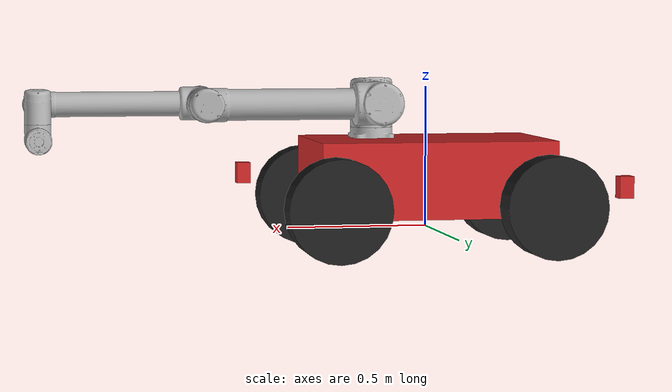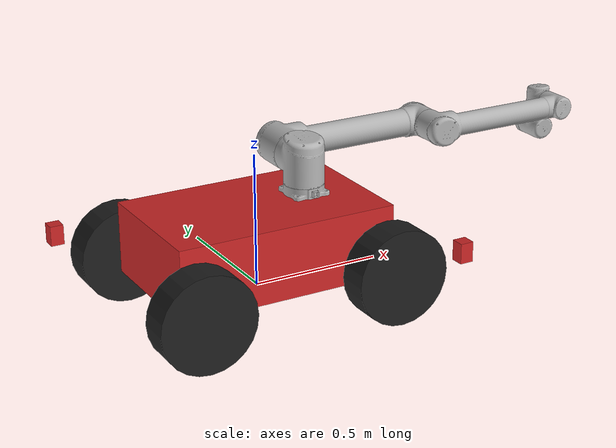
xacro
<?xml version="1.0"?>

<robot name="mecanum" xmlns:xacro="http://ros.org/wiki/xacro">

  <!-- include gazebo plugins -->
  <xacro:include filename="$(find mecanum_sim)/urdf/mecanum.gazebo" />
  <xacro:include filename="$(find mecanum_sim)/urdf/mecanum2.gazebo" />
  <!-- ur10 -->
  <xacro:include filename="$(find ur_description)/urdf/common.gazebo.xacro" />
  <xacro:include filename="$(find ur_description)/urdf/ur10.urdf.xacro" />

  <xacro:property name="base_width" value="0.52" />   <!-- 14.5 in -->
  <xacro:property name="base_length" value="0.84" />  <!-- 21 5/8 in -->
  <xacro:property name="base_height" value="0.27" />   <!-- 2.5 in  -->
  <xacro:property name="wheel_radius" value="0.18" /> <!-- 4.0 in  -->
  <xacro:property name="wheel_width" value="0.12" />  <!-- 3.0 in  -->
  <xacro:property name="wheel_gap" value="0.08" />    <!-- 2.0 in  -->
  <xacro:property name="wheel_setback" value="0.04" />    <!-- 1 5/8 in  -->
  <xacro:property name="lidar_width" value="0.0508" />    <!-- 2.0 in  -->
  <xacro:property name="lidar_length" value="0.0508" />    <!-- 2.0 in  -->
  <xacro:property name="lidar_height" value="0.0762" />    <!-- 3.0 in  -->
  <xacro:property name="lidar_setback" value="0.0127" />    <!-- 0.5 in  -->
  <xacro:property name="dx" value="0.04" />    <!-- 0.5 in  -->
  <xacro:property name="base_up" value="0.09" />

  <xacro:property name="base_mass" value="300.0" />
  <xacro:property name="wheel_mass" value="10.0" />

  <!--~~~~~~~~~~~~~~~~~~~~~~~~ ~ ROBOT BASE ~ ~~~~~~~~~~~~~~~~~~~~~~~~~~~~~~-->

  <link name="base_footprint">
    <visual>
      <geometry>
        <box size="0.001 0.001 0.001"/>
      </geometry>
      <origin rpy="0 0 0" xyz="0 0 0"/>
    </visual>
    <inertial>
        <mass value="0.0001" />
        <inertia ixx="0.001" ixy="0" ixz="0" iyy="0.001" iyz="0" izz="0.001" />
      </inertial>
  </link>

  <gazebo reference="base_footprint">
    <material>Gazebo/Green</material>
    <turnGravityOff>false</turnGravityOff>
  </gazebo>

  <joint name="base_joint" type="fixed">
    <parent link="base_footprint"/>
    <child link="base_link_0"/>
    <origin xyz="0.0 0.0 ${base_up}" rpy="0 0 0"/>
  </joint>
  <!-- Make a box for robot base -->
  <link name="base_link_0">

  	<!-- Draw imaginary box around the robot for collision detection -->
    <collision>
      <origin xyz="0 0 0" rpy="0 0 0"/>
      <geometry>
       <box size="${base_length} ${base_width} ${base_height}"/>
      </geometry>
    </collision>

    <!-- Describe how to draw the box in 3d -->
    <visual>
      <origin xyz="0 0 ${base_up}" rpy="0 0 0"/>
      <geometry>
           <box size="${base_length} ${base_width} ${base_height}"/>
      </geometry>
      <material name="red"/>
    </visual>

    <inertial>
      <mass value="${base_mass}" />
      <origin xyz="0 0 0" rpy="0 0 0"/>
      <inertia ixx="${(base_mass*(base_width*base_width+base_height*base_height)/12.0)}" ixy="0" ixz="0" iyy="${(base_mass*(base_length*base_length+base_height*base_height)/12.0)}" iyz="0" izz="${(base_mass*(base_width*base_width+base_length*base_length)/12.0)}" />
    </inertial>
  </link>

  <gazebo reference="base_link_0">
    <material>Gazebo/DarkGrey</material>
    <mu1>0.5</mu1>
    <mu2>0.5</mu2>
    <kp>500000.0</kp>
    <kd>10.0</kd>
    <minDepth>0.001</minDepth>
    <maxVel>0.3</maxVel>
    <fdir1>1 0 0</fdir1>
  </gazebo>

  <!--~~~~~~~~~~~~~~~~~~~~~~~~ ~ ROBOT FLLINK ~ ~~~~~~~~~~~~~~~~~~~~~~~~~~~~~~-->
  <joint name="fl_joint" type="fixed">
      <parent link="base_link_0"/>
      <child link="fl_link"/>
      <origin rpy="0 0 0" xyz="${base_length/2 - wheel_setback} ${base_width/2 + wheel_gap} 0.0"/>
      <axis xyz="0 0 0"/>
  </joint>

  <link name="fl_link">
      <visual>
        <geometry>
          <cylinder length="${wheel_width}" radius="${wheel_radius}"/>
        </geometry>
        <origin rpy="${pi/2} 0 0" xyz="0 0 0"/>
      </visual>

      <collision>
        <geometry>
          <cylinder length="${wheel_width}" radius="${wheel_radius}"/>
        </geometry>
        <origin rpy="${pi/2} 0 0" xyz="0 0 0"/>
      </collision>

      <inertial>
        <mass value="${wheel_mass}" />
        <origin rpy="${pi/2} 0 0" xyz="0 0 0"/>
        <inertia ixx="${(wheel_mass*wheel_radius*wheel_radius)/4.0+(wheel_mass*wheel_width*wheel_width)/3.0}" ixy="0" ixz="0" iyy="${(wheel_mass*wheel_radius*wheel_radius)/2.0}" iyz="0" izz="${(wheel_mass*wheel_radius*wheel_radius)/4.0+(wheel_mass*wheel_width*wheel_width)/3.0}" />
      </inertial>
    </link>

  <gazebo reference="fl_link">
    <material>Gazebo/Black</material>
    <mu1>0.5</mu1>
    <mu2>0.5</mu2>
    <kp>500000.0</kp>
    <kd>10.0</kd>
    <minDepth>0.001</minDepth>
    <maxVel>0.3</maxVel>
    <fdir1>1 0 0</fdir1>
  </gazebo>

  <!--~~~~~~~~~~~~~~~~~~~~~~~~ ~ ROBOT FRLINK ~ ~~~~~~~~~~~~~~~~~~~~~~~~~~~~~~-->
  <joint name="fr_joint" type="fixed">
      <parent link="base_link_0"/>
      <child link="fr_link"/>
      <origin rpy="0 0 0" xyz="${base_length/2 - wheel_setback} ${-base_width/2 - wheel_gap} 0.0"/>
      <axis xyz="0 0 0"/>
  </joint>

    <link name="fr_link">
        <visual>
          <geometry>
            <cylinder length="${wheel_width}" radius="${wheel_radius}"/>
          </geometry>
          <origin rpy="${pi/2} 0 0" xyz="0 0 0"/>
        </visual>

        <collision>
          <geometry>
            <cylinder length="${wheel_width}" radius="${wheel_radius}"/>
          </geometry>
          <origin rpy="${pi/2} 0 0" xyz="0 0 0"/>
        </collision>

        <inertial>
        <mass value="${wheel_mass}" />
        <origin rpy="${pi/2} 0 0" xyz="0 0 0"/>
        <inertia ixx="${(wheel_mass*wheel_radius*wheel_radius)/4.0+(wheel_mass*wheel_width*wheel_width)/3.0}" ixy="0" ixz="0" iyy="${(wheel_mass*wheel_radius*wheel_radius)/2.0}" iyz="0" izz="${(wheel_mass*wheel_radius*wheel_radius)/4.0+(wheel_mass*wheel_width*wheel_width)/3.0}" />
        </inertial>
      </link>

  <gazebo reference="fr_link">
    <material>Gazebo/Black</material>
    <mu1>0.5</mu1>
    <mu2>0.5</mu2>
    <kp>500000.0</kp>
    <kd>10.0</kd>
    <minDepth>0.001</minDepth>
    <maxVel>0.3</maxVel>
    <fdir1>1 0 0</fdir1>
  </gazebo>

  <!--~~~~~~~~~~~~~~~~~~~~~~~~ ~ ROBOT BLLINK ~ ~~~~~~~~~~~~~~~~~~~~~~~~~~~~~~-->
  <joint name="bl_joint" type="fixed">
      <parent link="base_link_0"/>
      <child link="bl_link"/>
      <origin rpy="0 0 0" xyz="${-base_length/2 + wheel_setback} ${base_width/2 + wheel_gap} 0.0"/>
      <axis xyz="0 0 0"/>
  </joint>

      <link name="bl_link">
          <visual>
            <geometry>
              <cylinder length="${wheel_width}" radius="${wheel_radius}"/>
            </geometry>
            <origin rpy="${pi/2} 0 0" xyz="0 0 0"/>
          </visual>

          <collision>
            <geometry>
              <cylinder length="${wheel_width}" radius="${wheel_radius}"/>
            </geometry>
            <origin rpy="${pi/2} 0 0" xyz="0 0 0"/>
          </collision>

          <inertial>
        <mass value="${wheel_mass}" />
        <origin rpy="${pi/2} 0 0" xyz="0 0 0"/>
        <inertia ixx="${(wheel_mass*wheel_radius*wheel_radius)/4.0+(wheel_mass*wheel_width*wheel_width)/3.0}" ixy="0" ixz="0" iyy="${(wheel_mass*wheel_radius*wheel_radius)/2.0}" iyz="0" izz="${(wheel_mass*wheel_radius*wheel_radius)/4.0+(wheel_mass*wheel_width*wheel_width)/3.0}" />
        </inertial>
        </link>

  <gazebo reference="bl_link">
    <material>Gazebo/Black</material>
    <mu1>0.5</mu1>
    <mu2>0.5</mu2>
    <kp>500000.0</kp>
    <kd>10.0</kd>
    <minDepth>0.001</minDepth>
    <maxVel>0.3</maxVel>
    <fdir1>1 0 0</fdir1>
  </gazebo>

  <!--~~~~~~~~~~~~~~~~~~~~~~~~ ~ ROBOT BRLINK ~ ~~~~~~~~~~~~~~~~~~~~~~~~~~~~~~-->
  <joint name="br_joint" type="fixed">
      <parent link="base_link_0"/>
      <child link="br_link"/>
      <origin rpy="0 0 0" xyz="${-base_length/2 + wheel_setback} ${-base_width/2 - wheel_gap} 0.0"/>
      <axis xyz="0 0 0"/>
  </joint>

        <link name="br_link">
            <visual>
              <geometry>
                <cylinder length="${wheel_width}" radius="${wheel_radius}"/>
              </geometry>
              <origin rpy="${pi/2} 0 0" xyz="0 0 0"/>
            </visual>

            <collision>
              <geometry>
                <cylinder length="${wheel_width}" radius="${wheel_radius}"/>
              </geometry>
              <origin rpy="${pi/2} 0 0" xyz="0 0 0"/>
            </collision>

           <inertial>
        <mass value="${wheel_mass}" />
        <origin rpy="${pi/2} 0 0" xyz="0 0 0"/>
        <inertia ixx="${(wheel_mass*wheel_radius*wheel_radius)/4.0+(wheel_mass*wheel_width*wheel_width)/3.0}" ixy="0" ixz="0" iyy="${(wheel_mass*wheel_radius*wheel_radius)/2.0}" iyz="0" izz="${(wheel_mass*wheel_radius*wheel_radius)/4.0+(wheel_mass*wheel_width*wheel_width)/3.0}" />
        </inertial>
          </link>

  <gazebo reference="br_link">
    <material>Gazebo/Black</material>
    <mu1>0.5</mu1>
    <mu2>0.5</mu2>
    <kp>500000.0</kp>
    <kd>10.0</kd>
    <minDepth>0.001</minDepth>
    <maxVel>0.3</maxVel>
    <fdir1>1 0 0</fdir1>
  </gazebo>

  <!--~~~~~~~~~~~~~~~~~~~~~~~ Arm ~~~~~~~~~~~~~~~~~~~~~~~~~~~~-->
  <!-- arm -->
  <xacro:ur10_robot prefix="" joint_limited="false"/>

  <joint name="ur10_arm_base" type="fixed">
    <parent link="base_link_0" />
    <child link = "base_link" />
    <origin xyz="0.20 0.0 0.23" rpy="0.0 0.0 0.0" />
  </joint>

  <!--~~~~~~~~~~~~~~~~~~~~~~~ ~ Lidar ~1~ ~~~~~~~~~~~~~~~~~~~~~~~~~~~~-->

  <link name="laser_link">

    <collision>
      <origin xyz="0 0 0" rpy="0 0 0"/>
      <geometry>
       <box size="${lidar_length} ${lidar_width} ${lidar_height}"/>
      </geometry>
    </collision>

    <visual>
      <origin xyz="0 0 0" rpy="0 0 0"/>
      <geometry>
           <box size="${lidar_length} ${lidar_width} ${lidar_height}"/>
      </geometry>
      <material name="red"/>
    </visual>

    <inertial>
      <mass value="1e-4" />
      <origin xyz="0 0 0" rpy="0 0 0"/>
      <inertia ixx="1e-6" ixy="0" ixz="0" iyy="1e-6" iyz="0" izz="1e-6" />
    </inertial>
  </link>

  <joint name="joint1" type="fixed">      <!-- Fused connection? (using continuous tilts view)-->
    <parent link="base_link_0"/>            <!--      robot link = parent     -->
    <child link="laser_link"/>     <!-- forward camera link = child  -->
    <origin xyz="${base_length/2 - wheel_setback + wheel_radius + dx} -${base_width/2 + wheel_gap + wheel_width/2 + dx} ${lidar_height}" rpy="0 0 0"/>   <!-- where child is relative to parent -->
    <axis xyz="0 0 0"/>                   <!-- ...describes the axis of rotation? -->
  </joint>

 <!--~~~~~~~~~~~~~~~~~~~~~~~ ~ Lidar ~2~ ~~~~~~~~~~~~~~~~~~~~~~~~~~~~-->

  <link name="laser_link_2">

    <collision>
      <origin xyz="0 0 0" rpy="0 0 0"/>
      <geometry>
       <box size="${lidar_length} ${lidar_width} ${lidar_height}"/>
      </geometry>
    </collision>

    <visual>
      <origin xyz="0 0 0" rpy="0 0 0"/>
      <geometry>
           <box size="${lidar_length} ${lidar_width} ${lidar_height}"/>
      </geometry>
      <material name="red"/>
    </visual>

    <inertial>
      <mass value="1e-4" />
      <origin xyz="0 0 0" rpy="0 0 0"/>
      <inertia ixx="1e-6" ixy="0" ixz="0" iyy="1e-6" iyz="0" izz="1e-6" />
    </inertial>
  </link>

  <joint name="joint2" type="fixed">      <!-- Fused connection? (using continuous tilts view)-->
    <parent link="base_link_0"/>            <!--      robot link = parent     -->
    <child link="laser_link_2"/>     <!-- forward camera link = child  -->
    <origin xyz="-${base_length/2 - wheel_setback + wheel_radius + dx} ${base_width/2 + wheel_gap + wheel_width/2 + dx} ${lidar_height}" rpy="0 0 0"/>   <!-- where child is relative to parent -->
    <axis xyz="0 0 0"/>                   <!-- ...describes the axis of rotation? -->
  </joint>

</robot>

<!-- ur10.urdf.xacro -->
<robot xmlns:xacro="http://www.ros.org/wiki/xacro">

<!--
  Author: Kelsey Hawkins
  Contributers: Jimmy Da Silva, Ajit Krisshna N L, Muhammad Asif Rana
-->

  <xacro:include filename="$(find ur_description)/urdf/ur.transmission.xacro" />
  <xacro:include filename="$(find ur_description)/urdf/ur.gazebo.xacro" />

  <property name="pi" value="3.14159265" />

  <!-- Inertia parameters -->
  <property name="base_mass" value="4.0" />  <!-- This mass might be incorrect -->
  <property name="shoulder_mass" value="7.778" />
  <property name="upper_arm_mass" value="12.93" />
  <property name="forearm_mass" value="3.87" />
  <property name="wrist_1_mass" value="1.96" />
  <property name="wrist_2_mass" value="1.96" />
  <property name="wrist_3_mass" value="0.202" />

  <property name="shoulder_cog" value="0.00008 0.00244 -0.037" />
  <property name="upper_arm_cog" value="0.00001 0.15061 0.38757" />
  <property name="forearm_cog" value="-0.00012 0.06112 0.1984" />
  <property name="wrist_1_cog" value="-0.00021 -0.00112 0.02269" />
  <property name="wrist_2_cog" value="-0.00021 0.00112 0.002269" />
  <property name="wrist_3_cog" value="0 -0.001156 -0.00149" />

  <!-- Kinematic model -->
  <!-- Properties from urcontrol.conf -->
  <property name="ur10_d1" value="0.1273" />
  <property name="ur10_a2" value="-0.612" />
  <property name="ur10_a3" value="-0.5723" />
  <property name="ur10_d4" value="0.163941" />
  <property name="ur10_d5" value="0.1157" />
  <property name="ur10_d6" value="0.0922" />

  <!-- Arbitrary offsets for shoulder/elbow joints -->
  <property name="shoulder_offset" value="0.220941" />  <!-- measured from model -->
  <property name="elbow_offset" value="-0.1719" /> <!-- measured from model -->

  <!-- link lengths used in model -->
  <property name="shoulder_height" value="${ur10_d1}" />
  <property name="upper_arm_length" value="${-ur10_a2}" />
  <property name="forearm_length" value="${-ur10_a3}" />
  <property name="wrist_1_length" value="${ur10_d4 - elbow_offset - shoulder_offset}" />
  <property name="wrist_2_length" value="${ur10_d5}" />
  <property name="wrist_3_length" value="${ur10_d6}" />

  <xacro:macro name="cylinder_inertial" params="radius length mass *origin">
    <inertial>
      <mass value="${mass}" />
      <insert_block name="origin" />
      <inertia ixx="${0.0833333 * mass * (3 * radius * radius + length * length)}" ixy="0.0" ixz="0.0"
        iyy="${0.0833333 * mass * (3 * radius * radius + length * length)}" iyz="0.0"
        izz="${0.5 * mass * radius * radius}" />
    </inertial>
  </xacro:macro>

  <xacro:macro name="ur10_robot" params="prefix joint_limited">

    <link name="${prefix}base_link" >
      <visual>
        <geometry>
          <mesh filename="package://ur_description/meshes/ur10/visual/base.dae"/>
        </geometry>
        <material name="LightGrey">
          <color rgba="0.7 0.7 0.7 1.0"/>
        </material>
      </visual>
      <collision>
        <geometry>
          <mesh filename="package://ur_description/meshes/ur10/collision/base.stl"/>
        </geometry>
      </collision>
      <xacro:cylinder_inertial radius="0.075" length="0.038" mass="${base_mass}">
        <origin xyz="0.0 0.0 0.0" rpy="0 0 0" />
      </xacro:cylinder_inertial>
    </link>

    <joint name="${prefix}shoulder_pan_joint" type="revolute">
      <parent link="${prefix}base_link" />
      <child link = "${prefix}shoulder_link" />
      <origin xyz="0.0 0.0 ${shoulder_height}" rpy="0.0 0.0 0.0" />
      <axis xyz="0 0 1" />
      <xacro:unless value="${joint_limited}">
        <limit lower="${-2.0 * pi}" upper="${2.0 * pi}" effort="330.0" velocity="2.16"/>
      </xacro:unless>
      <xacro:if value="${joint_limited}">
        <limit lower="${-pi}" upper="${pi}" effort="330.0" velocity="2.16"/>
      </xacro:if>
      <dynamics damping="0.0" friction="0.0"/>
    </joint>

    <link name="${prefix}shoulder_link">
      <visual>
        <geometry>
          <mesh filename="package://ur_description/meshes/ur10/visual/shoulder.dae"/>
        </geometry>
        <material name="LightGrey">
          <color rgba="0.7 0.7 0.7 1.0"/>
        </material>
      </visual>
      <collision>
        <geometry>
          <mesh filename="package://ur_description/meshes/ur10/collision/shoulder.stl"/>
        </geometry>
      </collision>
      <xacro:cylinder_inertial radius="0.075" length="0.178" mass="${shoulder_mass}">
        <origin xyz="0.0 0.0 0.0" rpy="0 0 0" />
      </xacro:cylinder_inertial>
    </link>

    <joint name="${prefix}shoulder_lift_joint" type="revolute">
      <parent link="${prefix}shoulder_link" />
      <child link = "${prefix}upper_arm_link" />
      <origin xyz="0.0 ${shoulder_offset} 0.0" rpy="0.0 ${pi / 2.0} 0.0" />
      <axis xyz="0 1 0" />
      <xacro:unless value="${joint_limited}">
        <limit lower="${-2.0 * pi}" upper="${2.0 * pi}" effort="330.0" velocity="2.16"/>
      </xacro:unless>
      <xacro:if value="${joint_limited}">
        <limit lower="${-pi}" upper="${pi}" effort="330.0" velocity="2.16"/>
      </xacro:if>
      <dynamics damping="0.0" friction="0.0"/>
    </joint>

    <link name="${prefix}upper_arm_link">
      <visual>
        <geometry>
          <mesh filename="package://ur_description/meshes/ur10/visual/upperarm.dae"/>
        </geometry>
        <material name="LightGrey">
          <color rgba="0.7 0.7 0.7 1.0"/>
        </material>
      </visual>
      <collision>
        <geometry>
          <mesh filename="package://ur_description/meshes/ur10/collision/upperarm.stl"/>
        </geometry>
      </collision>
      <xacro:cylinder_inertial radius="0.075" length="${-ur10_a2}" mass="${upper_arm_mass}">
        <origin xyz="0.0 0.0 ${-ur10_a2/2.0}" rpy="0 0 0" />
      </xacro:cylinder_inertial>
    </link>

    <joint name="${prefix}elbow_joint" type="revolute">
      <parent link="${prefix}upper_arm_link" />
      <child link = "${prefix}forearm_link" />
      <origin xyz="0.0 ${elbow_offset} ${upper_arm_length}" rpy="0.0 0.0 0.0" />
      <axis xyz="0 1 0" />
      <xacro:unless value="${joint_limited}">
        <limit lower="${-2.0 * pi}" upper="${2.0 * pi}" effort="150.0" velocity="3.15"/>
      </xacro:unless>
      <xacro:if value="${joint_limited}">
        <limit lower="${-pi}" upper="${pi}" effort="150.0" velocity="3.15"/>
      </xacro:if>
      <dynamics damping="0.0" friction="0.0"/>
    </joint>

    <link name="${prefix}forearm_link">
      <visual>
         <geometry>
          <mesh filename="package://ur_description/meshes/ur10/visual/forearm.dae"/>
        </geometry>
        <material name="LightGrey">
          <color rgba="0.7 0.7 0.7 1.0"/>
        </material>
      </visual>
      <collision>
        <geometry>
          <mesh filename="package://ur_description/meshes/ur10/collision/forearm.stl"/>
        </geometry>
      </collision>
      <xacro:cylinder_inertial radius="0.075" length="${-ur10_a3}" mass="${forearm_mass}">
        <origin xyz="0.0 0.0 ${-ur10_a3/2.0}" rpy="0 0 0" />
      </xacro:cylinder_inertial>
    </link>

    <joint name="${prefix}wrist_1_joint" type="revolute">
      <parent link="${prefix}forearm_link" />
      <child link = "${prefix}wrist_1_link" />
      <origin xyz="0.0 0.0 ${forearm_length}" rpy="0.0 ${pi / 2.0} 0.0" />
      <axis xyz="0 1 0" />
      <xacro:unless value="${joint_limited}">
        <limit lower="${-2.0 * pi}" upper="${2.0 * pi}" effort="54.0" velocity="3.2"/>
      </xacro:unless>
      <xacro:if value="${joint_limited}">
        <limit lower="${-pi}" upper="${pi}" effort="54.0" velocity="3.2"/>
      </xacro:if>
      <dynamics damping="0.0" friction="0.0"/>
    </joint>

    <link name="${prefix}wrist_1_link">
      <visual>
        <geometry>
          <mesh filename="package://ur_description/meshes/ur10/visual/wrist1.dae"/>
        </geometry>
        <material name="LightGrey">
          <color rgba="0.7 0.7 0.7 1.0"/>
        </material>
      </visual>
      <collision>
        <geometry>
          <mesh filename="package://ur_description/meshes/ur10/collision/wrist1.stl"/>
        </geometry>
      </collision>
      <xacro:cylinder_inertial radius="0.075" length="0.12" mass="${wrist_1_mass}">
        <origin xyz="0.0 0.0 0.0" rpy="0 0 0" />
      </xacro:cylinder_inertial>
    </link>

    <joint name="${prefix}wrist_2_joint" type="revolute">
      <parent link="${prefix}wrist_1_link" />
      <child link = "${prefix}wrist_2_link" />
      <origin xyz="0.0 ${wrist_1_length} 0.0" rpy="0.0 0.0 0.0" />
      <axis xyz="0 0 1" />
      <xacro:unless value="${joint_limited}">
        <limit lower="${-2.0 * pi}" upper="${2.0 * pi}" effort="54.0" velocity="3.2"/>
      </xacro:unless>
      <xacro:if value="${joint_limited}">
        <limit lower="${-pi}" upper="${pi}" effort="54.0" velocity="3.2"/>
      </xacro:if>
      <dynamics damping="0.0" friction="0.0"/>
    </joint>

    <link name="${prefix}wrist_2_link">
      <visual>
        <geometry>
          <mesh filename="package://ur_description/meshes/ur10/visual/wrist2.dae"/>
        </geometry>
        <material name="LightGrey">
          <color rgba="0.7 0.7 0.7 1.0"/>
        </material>
      </visual>
      <collision>
        <geometry>
          <mesh filename="package://ur_description/meshes/ur10/collision/wrist2.stl"/>
        </geometry>
      </collision>
      <xacro:cylinder_inertial radius="0.075" length="0.12" mass="${wrist_2_mass}">
        <origin xyz="0.0 0.0 0.0" rpy="0 0 0" />
      </xacro:cylinder_inertial>
    </link>

    <joint name="${prefix}wrist_3_joint" type="revolute">
      <parent link="${prefix}wrist_2_link" />
      <child link = "${prefix}wrist_3_link" />
      <origin xyz="0.0 0.0 ${wrist_2_length}" rpy="0.0 0.0 0.0" />
      <axis xyz="0 1 0" />
      <xacro:unless value="${joint_limited}">
        <limit lower="${-2.0 * pi}" upper="${2.0 * pi}" effort="54.0" velocity="3.2"/>
      </xacro:unless>
      <xacro:if value="${joint_limited}">
        <limit lower="${-pi}" upper="${pi}" effort="54.0" velocity="3.2"/>
      </xacro:if>
      <dynamics damping="0.0" friction="0.0"/>
    </joint>

    <link name="${prefix}wrist_3_link">
      <visual>
        <geometry>
          <mesh filename="package://ur_description/meshes/ur10/visual/wrist3.dae"/>
        </geometry>
        <material name="LightGrey">
          <color rgba="0.7 0.7 0.7 1.0"/>
        </material>
      </visual>
      <collision>
        <geometry>
          <mesh filename="package://ur_description/meshes/ur10/collision/wrist3.stl"/>
        </geometry>
      </collision>
      <xacro:cylinder_inertial radius="0.075" length="0.12" mass="${wrist_3_mass}">
        <origin xyz="0.0 0.0 0.0" rpy="0 0 0" />
      </xacro:cylinder_inertial>
    </link>

    <joint name="${prefix}ee_fixed_joint" type="fixed">
      <parent link="${prefix}wrist_3_link" />
      <child link = "${prefix}ee_link" />
      <origin xyz="0.0 ${wrist_3_length} 0.0" rpy="0.0 0.0 ${pi/2.0}" />
    </joint>

    <link name="${prefix}ee_link">
      <collision>
        <geometry>
          <box size="0.01 0.01 0.01"/>
        </geometry>
        <origin rpy="0 0 0" xyz="-0.01 0 0"/>
      </collision>
    </link>

    <xacro:ur_arm_transmission prefix="${prefix}" />
    <xacro:ur_arm_gazebo prefix="${prefix}" />

    <!-- ROS base_link to UR 'Base' Coordinates transform -->
    <link name="${prefix}base"/>
    <joint name="${prefix}base_link-base_fixed_joint" type="fixed">
      <!-- NOTE: this rotation is only needed as long as base_link itself is
                 not corrected wrt the real robot (ie: rotated over 180
                 degrees)
      -->
      <origin xyz="0 0 0" rpy="0 0 ${-pi}"/>
      <parent link="${prefix}base_link"/>
      <child link="${prefix}base"/>
    </joint>

    <!-- Frame coincident with all-zeros TCP on UR controller -->

    <joint name="${prefix}wrist_3_link-tool0_fixed_joint" type="fixed">
      <origin xyz="0 ${wrist_3_length+0.005} 0" rpy="${pi/-2.0} 0 0"/>
      <parent link="${prefix}wrist_3_link"/>
      <child link="${prefix}tool0"/>
    </joint>

    <link name="${prefix}tool0"/>

  </xacro:macro>
</robot>
